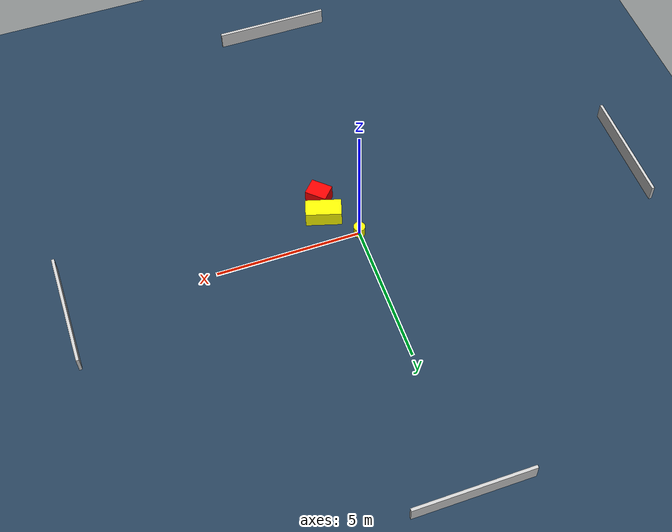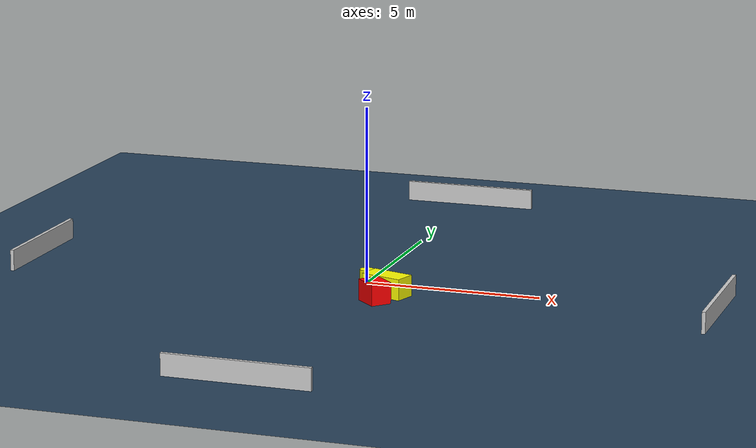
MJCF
<?xml version="1.0" ?>
<mujoco model="generated_environment">
  <option timestep="0.01" integrator="RK4" cone="elliptic"/>
  <default>
    <geom density="1"/>
  </default>
  <asset>
    <texture builtin="gradient" height="3072" name="skybox" rgb1="0.3 0.5 0.7" rgb2="0 0 0" type="skybox" width="512"/>
    <texture builtin="checker" height="300" name="groundplane" rgb1="0.2 0.3 0.4" rgb2="0.1 0.2 0.3" type="2d" width="300"/>
    <material name="groundplane" reflectance="0.2" texrepeat="5 5" texture="groundplane"/>
  </asset>
  <worldbody>
    <light dir="0 0 -1" directional="true" pos="0 0 1.5"/>
    <geom condim="3" friction="0.5 0.005 0.001" material="groundplane" name="floor" pos="0 0 0" size="0 0 0.05" type="plane"/>
    <body name="walls">
      <geom name="wall_1" condim="4" pos="-10.0 0.0 0.3" rgba="0.800000011920929 0.800000011920929 0.800000011920929 1.0" size="0.05 2.0 0.3" type="box"/>
      <geom name="wall_2" condim="4" pos="10.0 0.0 0.3" rgba="0.800000011920929 0.800000011920929 0.800000011920929 1.0" size="0.05 2.0 0.3" type="box"/>
      <geom name="wall_3" condim="4" pos="0.0 -10.0 0.3" rgba="0.800000011920929 0.800000011920929 0.800000011920929 1.0" size="2.0 0.05 0.3" type="box"/>
      <geom name="wall_4" condim="4" pos="0.0 10.0 0.3" rgba="0.800000011920929 0.800000011920929 0.800000011920929 1.0" size="2.0 0.05 0.3" type="box"/>
    </body>
    <body name="robot">
      <joint name="joint_x" type="slide" pos="0 0 0" axis="1 0 0"/>
      <joint name="joint_y" type="slide" pos="0 0 0" axis="0 1 0"/>
      <geom name="robot" type="cylinder" pos="0.0 0.0 0.2" size="0.2 0.2 0.0" mass="5.0" friction="1.0 0.005 0.0001" condim="4" rgba="1.0 1.0 0.0 1.0"/>
    </body>
    <body name="obstacle_1_movable">
      <geom name="obstacle_1_movable" condim="4" pos="0.9300114384358275 -1.030437726592829 0.3" euler="0 0 73.10140521081742" friction="0.0 0.005 0.001" rgba="1.0 1.0 0.0 1.0" size="0.31184480931274866 0.6143046470820621 0.3" type="box" mass="0.1"/>
      <joint type="free"/>
    </body>
    <body name="obstacle_2_static">
      <geom name="obstacle_2_static" condim="4" pos="0.8421311690833273 -1.8023666863816892 0.3" euler="0 0 316.9872099485871" friction="0.0 0.005 0.001" rgba="1.0 0.0 0.0 1.0" size="0.3786237860812968 0.2956771035156779 0.3" type="box"/>
    </body>
  </worldbody>
  <actuator>
    <motor name="actuator_x" joint="joint_x" gear="1" ctrlrange="-1 1"/>
    <motor name="actuator_y" joint="joint_y" gear="1" ctrlrange="-1 1"/>
  </actuator>
</mujoco>
